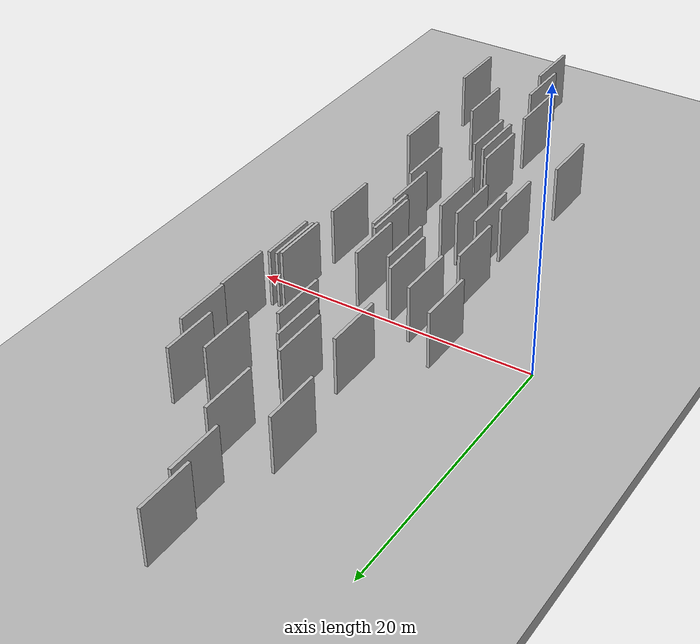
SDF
<?xml version="1.0" encoding="utf-8"?>

<sdf version="1.6">

   <world name="default">

      <gui fullscreen="0">

         <camera name="user_camera">

            <pose>-15 0 4.57585 0 0 0</pose>

            <view_controller>orbit</view_controller>

         </camera>

      </gui>

      <scene>

         <sky>

           <clouds>

             <speed>12</speed>

           </clouds>

         </sky>

         <ambient>0.4 0.4 0.4 1</ambient>

         <background>0.7 0.7 0.7 1</background>

         <shadows>1</shadows>

      </scene>

      <gravity>0 0 -9.8066</gravity>

      <magnetic_field>6e-06 2.3e-05 -4.2e-05</magnetic_field>

      <physics default="0" name="default_physics" type="ode">

         <ode>

            <solver>

               <type>quick</type>

               <iters>10</iters>

               <sor>1.0</sor>

               <use_dynamic_moi_rescaling>0</use_dynamic_moi_rescaling>

            </solver>

            <constraints>

               <cfm>0</cfm>

               <erp>0.2</erp>

               <contact_max_correcting_vel>100</contact_max_correcting_vel>

               <contact_surface_layer>0.001</contact_surface_layer>

            </constraints>

         </ode>

         <max_step_size>0.004</max_step_size>

         <real_time_factor>1</real_time_factor>

         <real_time_update_rate>250</real_time_update_rate>

      </physics>

      <light name="sun" type="directional">

         <cast_shadows>1</cast_shadows>

         <pose>0 0 10 0 0 0</pose>

         <diffuse>0.8 0.8 0.8 1</diffuse>

         <specular>0.2 0.2 0.2 1</specular>

         <attenuation>

            <range>1000</range>

            <constant>0.9</constant>

            <linear>0.01</linear>

            <quadratic>0.001</quadratic>

         </attenuation>

         <direction>-0.5 0.1 -0.9</direction>

      </light>

      <include>

         <name>ground_plane_1</name>

         <uri>model://HANNAS_ground_plane</uri>

         <pose>0 0 0  0 0 0</pose>

      </include>

      <include>

         <name>ground_plane_2</name>

         <uri>model://HANNAS_ground_plane</uri>

         <pose>100 0 0  0 0 0</pose>

      </include>

      <model name="HANNAS_wall_1">

         <static>1</static>

         <pose frame="">15.0076 13.9234 2.5 0.000000 0.000000 1.570796</pose>

         <link name="link">

            <pose frame="">0 0 2.00 0 0 0</pose>

            <collision name="collision">

               <geometry>

                  <box>

                     <size>4.00 0.2 4.00</size>

                  </box>

               </geometry>

               <max_contacts>10</max_contacts>

               <surface>

                  <contact>

                     <ode/>

                  </contact>

                  <bounce/>

                  <friction>

                     <torsional>

                        <ode/>

                     </torsional>

                     <ode/>

                  </friction>

               </surface>

            </collision>

            <visual name="visual">

               <cast_shadows>0</cast_shadows>

               <geometry>

                  <box>

                     <size>4.00 0.2 4.00</size>

                  </box>

               </geometry>

               <material>

                  <script>

                     <uri>model://HANNAS_wall/materials/scripts</uri>

                     <uri>model://HANNAS_wall/materials/textures</uri>

                     <name>vrc/HANNAS_wall</name>

                  </script>

               </material>

            </visual>

            <self_collide>0</self_collide>

            <enable_wind>0</enable_wind>

            <kinematic>0</kinematic>

         </link>

      </model>

      <model name="HANNAS_wall_2">

         <static>1</static>

         <pose frame="">8.5708 0.7904 2.5 0.000000 0.000000 1.570796</pose>

         <link name="link">

            <pose frame="">0 0 2.00 0 0 0</pose>

            <collision name="collision">

               <geometry>

                  <box>

                     <size>4.00 0.2 4.00</size>

                  </box>

               </geometry>

               <max_contacts>10</max_contacts>

               <surface>

                  <contact>

                     <ode/>

                  </contact>

                  <bounce/>

                  <friction>

                     <torsional>

                        <ode/>

                     </torsional>

                     <ode/>

                  </friction>

               </surface>

            </collision>

            <visual name="visual">

               <cast_shadows>0</cast_shadows>

               <geometry>

                  <box>

                     <size>4.00 0.2 4.00</size>

                  </box>

               </geometry>

               <material>

                  <script>

                     <uri>model://HANNAS_wall/materials/scripts</uri>

                     <uri>model://HANNAS_wall/materials/textures</uri>

                     <name>vrc/HANNAS_wall</name>

                  </script>

               </material>

            </visual>

            <self_collide>0</self_collide>

            <enable_wind>0</enable_wind>

            <kinematic>0</kinematic>

         </link>

      </model>

      <model name="HANNAS_wall_3">

         <static>1</static>

         <pose frame="">11.1726 0.4617 2.5 0.000000 0.000000 1.570796</pose>

         <link name="link">

            <pose frame="">0 0 2.00 0 0 0</pose>

            <collision name="collision">

               <geometry>

                  <box>

                     <size>4.00 0.2 4.00</size>

                  </box>

               </geometry>

               <max_contacts>10</max_contacts>

               <surface>

                  <contact>

                     <ode/>

                  </contact>

                  <bounce/>

                  <friction>

                     <torsional>

                        <ode/>

                     </torsional>

                     <ode/>

                  </friction>

               </surface>

            </collision>

            <visual name="visual">

               <cast_shadows>0</cast_shadows>

               <geometry>

                  <box>

                     <size>4.00 0.2 4.00</size>

                  </box>

               </geometry>

               <material>

                  <script>

                     <uri>model://HANNAS_wall/materials/scripts</uri>

                     <uri>model://HANNAS_wall/materials/textures</uri>

                     <name>vrc/HANNAS_wall</name>

                  </script>

               </material>

            </visual>

            <self_collide>0</self_collide>

            <enable_wind>0</enable_wind>

            <kinematic>0</kinematic>

         </link>

      </model>

      <model name="HANNAS_wall_4">

         <static>1</static>

         <pose frame="">13.2742 12.8010 2.5 0.000000 0.000000 1.570796</pose>

         <link name="link">

            <pose frame="">0 0 2.00 0 0 0</pose>

            <collision name="collision">

               <geometry>

                  <box>

                     <size>4.00 0.2 4.00</size>

                  </box>

               </geometry>

               <max_contacts>10</max_contacts>

               <surface>

                  <contact>

                     <ode/>

                  </contact>

                  <bounce/>

                  <friction>

                     <torsional>

                        <ode/>

                     </torsional>

                     <ode/>

                  </friction>

               </surface>

            </collision>

            <visual name="visual">

               <cast_shadows>0</cast_shadows>

               <geometry>

                  <box>

                     <size>4.00 0.2 4.00</size>

                  </box>

               </geometry>

               <material>

                  <script>

                     <uri>model://HANNAS_wall/materials/scripts</uri>

                     <uri>model://HANNAS_wall/materials/textures</uri>

                     <name>vrc/HANNAS_wall</name>

                  </script>

               </material>

            </visual>

            <self_collide>0</self_collide>

            <enable_wind>0</enable_wind>

            <kinematic>0</kinematic>

         </link>

      </model>

      <model name="HANNAS_wall_5">

         <static>1</static>

         <pose frame="">5.7178 -2.5260 2.5 0.000000 0.000000 1.570796</pose>

         <link name="link">

            <pose frame="">0 0 2.00 0 0 0</pose>

            <collision name="collision">

               <geometry>

                  <box>

                     <size>4.00 0.2 4.00</size>

                  </box>

               </geometry>

               <max_contacts>10</max_contacts>

               <surface>

                  <contact>

                     <ode/>

                  </contact>

                  <bounce/>

                  <friction>

                     <torsional>

                        <ode/>

                     </torsional>

                     <ode/>

                  </friction>

               </surface>

            </collision>

            <visual name="visual">

               <cast_shadows>0</cast_shadows>

               <geometry>

                  <box>

                     <size>4.00 0.2 4.00</size>

                  </box>

               </geometry>

               <material>

                  <script>

                     <uri>model://HANNAS_wall/materials/scripts</uri>

                     <uri>model://HANNAS_wall/materials/textures</uri>

                     <name>vrc/HANNAS_wall</name>

                  </script>

               </material>

            </visual>

            <self_collide>0</self_collide>

            <enable_wind>0</enable_wind>

            <kinematic>0</kinematic>

         </link>

      </model>

      <model name="HANNAS_wall_6">

         <static>1</static>

         <pose frame="">10.2606 -19.6512 2.5 0.000000 0.000000 1.570796</pose>

         <link name="link">

            <pose frame="">0 0 2.00 0 0 0</pose>

            <collision name="collision">

               <geometry>

                  <box>

                     <size>4.00 0.2 4.00</size>

                  </box>

               </geometry>

               <max_contacts>10</max_contacts>

               <surface>

                  <contact>

                     <ode/>

                  </contact>

                  <bounce/>

                  <friction>

                     <torsional>

                        <ode/>

                     </torsional>

                     <ode/>

                  </friction>

               </surface>

            </collision>

            <visual name="visual">

               <cast_shadows>0</cast_shadows>

               <geometry>

                  <box>

                     <size>4.00 0.2 4.00</size>

                  </box>

               </geometry>

               <material>

                  <script>

                     <uri>model://HANNAS_wall/materials/scripts</uri>

                     <uri>model://HANNAS_wall/materials/textures</uri>

                     <name>vrc/HANNAS_wall</name>

                  </script>

               </material>

            </visual>

            <self_collide>0</self_collide>

            <enable_wind>0</enable_wind>

            <kinematic>0</kinematic>

         </link>

      </model>

      <model name="HANNAS_wall_7">

         <static>1</static>

         <pose frame="">13.9472 -18.7358 2.5 0.000000 0.000000 1.570796</pose>

         <link name="link">

            <pose frame="">0 0 2.00 0 0 0</pose>

            <collision name="collision">

               <geometry>

                  <box>

                     <size>4.00 0.2 4.00</size>

                  </box>

               </geometry>

               <max_contacts>10</max_contacts>

               <surface>

                  <contact>

                     <ode/>

                  </contact>

                  <bounce/>

                  <friction>

                     <torsional>

                        <ode/>

                     </torsional>

                     <ode/>

                  </friction>

               </surface>

            </collision>

            <visual name="visual">

               <cast_shadows>0</cast_shadows>

               <geometry>

                  <box>

                     <size>4.00 0.2 4.00</size>

                  </box>

               </geometry>

               <material>

                  <script>

                     <uri>model://HANNAS_wall/materials/scripts</uri>

                     <uri>model://HANNAS_wall/materials/textures</uri>

                     <name>vrc/HANNAS_wall</name>

                  </script>

               </material>

            </visual>

            <self_collide>0</self_collide>

            <enable_wind>0</enable_wind>

            <kinematic>0</kinematic>

         </link>

      </model>

      <model name="HANNAS_wall_8">

         <static>1</static>

         <pose frame="">9.9331 -13.4862 2.5 0.000000 0.000000 1.570796</pose>

         <link name="link">

            <pose frame="">0 0 2.00 0 0 0</pose>

            <collision name="collision">

               <geometry>

                  <box>

                     <size>4.00 0.2 4.00</size>

                  </box>

               </geometry>

               <max_contacts>10</max_contacts>

               <surface>

                  <contact>

                     <ode/>

                  </contact>

                  <bounce/>

                  <friction>

                     <torsional>

                        <ode/>

                     </torsional>

                     <ode/>

                  </friction>

               </surface>

            </collision>

            <visual name="visual">

               <cast_shadows>0</cast_shadows>

               <geometry>

                  <box>

                     <size>4.00 0.2 4.00</size>

                  </box>

               </geometry>

               <material>

                  <script>

                     <uri>model://HANNAS_wall/materials/scripts</uri>

                     <uri>model://HANNAS_wall/materials/textures</uri>

                     <name>vrc/HANNAS_wall</name>

                  </script>

               </material>

            </visual>

            <self_collide>0</self_collide>

            <enable_wind>0</enable_wind>

            <kinematic>0</kinematic>

         </link>

      </model>

      <model name="HANNAS_wall_9">

         <static>1</static>

         <pose frame="">11.7046 -2.4017 2.5 0.000000 0.000000 1.570796</pose>

         <link name="link">

            <pose frame="">0 0 2.00 0 0 0</pose>

            <collision name="collision">

               <geometry>

                  <box>

                     <size>4.00 0.2 4.00</size>

                  </box>

               </geometry>

               <max_contacts>10</max_contacts>

               <surface>

                  <contact>

                     <ode/>

                  </contact>

                  <bounce/>

                  <friction>

                     <torsional>

                        <ode/>

                     </torsional>

                     <ode/>

                  </friction>

               </surface>

            </collision>

            <visual name="visual">

               <cast_shadows>0</cast_shadows>

               <geometry>

                  <box>

                     <size>4.00 0.2 4.00</size>

                  </box>

               </geometry>

               <material>

                  <script>

                     <uri>model://HANNAS_wall/materials/scripts</uri>

                     <uri>model://HANNAS_wall/materials/textures</uri>

                     <name>vrc/HANNAS_wall</name>

                  </script>

               </material>

            </visual>

            <self_collide>0</self_collide>

            <enable_wind>0</enable_wind>

            <kinematic>0</kinematic>

         </link>

      </model>

      <model name="HANNAS_wall_10">

         <static>1</static>

         <pose frame="">6.5764 1.9264 2.5 0.000000 0.000000 1.570796</pose>

         <link name="link">

            <pose frame="">0 0 2.00 0 0 0</pose>

            <collision name="collision">

               <geometry>

                  <box>

                     <size>4.00 0.2 4.00</size>

                  </box>

               </geometry>

               <max_contacts>10</max_contacts>

               <surface>

                  <contact>

                     <ode/>

                  </contact>

                  <bounce/>

                  <friction>

                     <torsional>

                        <ode/>

                     </torsional>

                     <ode/>

                  </friction>

               </surface>

            </collision>

            <visual name="visual">

               <cast_shadows>0</cast_shadows>

               <geometry>

                  <box>

                     <size>4.00 0.2 4.00</size>

                  </box>

               </geometry>

               <material>

                  <script>

                     <uri>model://HANNAS_wall/materials/scripts</uri>

                     <uri>model://HANNAS_wall/materials/textures</uri>

                     <name>vrc/HANNAS_wall</name>

                  </script>

               </material>

            </visual>

            <self_collide>0</self_collide>

            <enable_wind>0</enable_wind>

            <kinematic>0</kinematic>

         </link>

      </model>

      <model name="HANNAS_wall_11">

         <static>1</static>

         <pose frame="">4.2827 3.4458 2.5 0.000000 0.000000 1.570796</pose>

         <link name="link">

            <pose frame="">0 0 2.00 0 0 0</pose>

            <collision name="collision">

               <geometry>

                  <box>

                     <size>4.00 0.2 4.00</size>

                  </box>

               </geometry>

               <max_contacts>10</max_contacts>

               <surface>

                  <contact>

                     <ode/>

                  </contact>

                  <bounce/>

                  <friction>

                     <torsional>

                        <ode/>

                     </torsional>

                     <ode/>

                  </friction>

               </surface>

            </collision>

            <visual name="visual">

               <cast_shadows>0</cast_shadows>

               <geometry>

                  <box>

                     <size>4.00 0.2 4.00</size>

                  </box>

               </geometry>

               <material>

                  <script>

                     <uri>model://HANNAS_wall/materials/scripts</uri>

                     <uri>model://HANNAS_wall/materials/textures</uri>

                     <name>vrc/HANNAS_wall</name>

                  </script>

               </material>

            </visual>

            <self_collide>0</self_collide>

            <enable_wind>0</enable_wind>

            <kinematic>0</kinematic>

         </link>

      </model>

      <model name="HANNAS_wall_12">

         <static>1</static>

         <pose frame="">10.5418 9.6106 2.5 0.000000 0.000000 1.570796</pose>

         <link name="link">

            <pose frame="">0 0 2.00 0 0 0</pose>

            <collision name="collision">

               <geometry>

                  <box>

                     <size>4.00 0.2 4.00</size>

                  </box>

               </geometry>

               <max_contacts>10</max_contacts>

               <surface>

                  <contact>

                     <ode/>

                  </contact>

                  <bounce/>

                  <friction>

                     <torsional>

                        <ode/>

                     </torsional>

                     <ode/>

                  </friction>

               </surface>

            </collision>

            <visual name="visual">

               <cast_shadows>0</cast_shadows>

               <geometry>

                  <box>

                     <size>4.00 0.2 4.00</size>

                  </box>

               </geometry>

               <material>

                  <script>

                     <uri>model://HANNAS_wall/materials/scripts</uri>

                     <uri>model://HANNAS_wall/materials/textures</uri>

                     <name>vrc/HANNAS_wall</name>

                  </script>

               </material>

            </visual>

            <self_collide>0</self_collide>

            <enable_wind>0</enable_wind>

            <kinematic>0</kinematic>

         </link>

      </model>

      <model name="HANNAS_wall_13">

         <static>1</static>

         <pose frame="">15.0496 2.9080 2.5 0.000000 0.000000 1.570796</pose>

         <link name="link">

            <pose frame="">0 0 2.00 0 0 0</pose>

            <collision name="collision">

               <geometry>

                  <box>

                     <size>4.00 0.2 4.00</size>

                  </box>

               </geometry>

               <max_contacts>10</max_contacts>

               <surface>

                  <contact>

                     <ode/>

                  </contact>

                  <bounce/>

                  <friction>

                     <torsional>

                        <ode/>

                     </torsional>

                     <ode/>

                  </friction>

               </surface>

            </collision>

            <visual name="visual">

               <cast_shadows>0</cast_shadows>

               <geometry>

                  <box>

                     <size>4.00 0.2 4.00</size>

                  </box>

               </geometry>

               <material>

                  <script>

                     <uri>model://HANNAS_wall/materials/scripts</uri>

                     <uri>model://HANNAS_wall/materials/textures</uri>

                     <name>vrc/HANNAS_wall</name>

                  </script>

               </material>

            </visual>

            <self_collide>0</self_collide>

            <enable_wind>0</enable_wind>

            <kinematic>0</kinematic>

         </link>

      </model>

      <model name="HANNAS_wall_14">

         <static>1</static>

         <pose frame="">15.7496 3.1780 2.5 0.000000 0.000000 1.570796</pose>

         <link name="link">

            <pose frame="">0 0 2.00 0 0 0</pose>

            <collision name="collision">

               <geometry>

                  <box>

                     <size>4.00 0.2 4.00</size>

                  </box>

               </geometry>

               <max_contacts>10</max_contacts>

               <surface>

                  <contact>

                     <ode/>

                  </contact>

                  <bounce/>

                  <friction>

                     <torsional>

                        <ode/>

                     </torsional>

                     <ode/>

                  </friction>

               </surface>

            </collision>

            <visual name="visual">

               <cast_shadows>0</cast_shadows>

               <geometry>

                  <box>

                     <size>4.00 0.2 4.00</size>

                  </box>

               </geometry>

               <material>

                  <script>

                     <uri>model://HANNAS_wall/materials/scripts</uri>

                     <uri>model://HANNAS_wall/materials/textures</uri>

                     <name>vrc/HANNAS_wall</name>

                  </script>

               </material>

            </visual>

            <self_collide>0</self_collide>

            <enable_wind>0</enable_wind>

            <kinematic>0</kinematic>

         </link>

      </model>

      <model name="HANNAS_wall_15">

         <static>1</static>

         <pose frame="">15.0167 -2.6453 2.5 0.000000 0.000000 1.570796</pose>

         <link name="link">

            <pose frame="">0 0 2.00 0 0 0</pose>

            <collision name="collision">

               <geometry>

                  <box>

                     <size>4.00 0.2 4.00</size>

                  </box>

               </geometry>

               <max_contacts>10</max_contacts>

               <surface>

                  <contact>

                     <ode/>

                  </contact>

                  <bounce/>

                  <friction>

                     <torsional>

                        <ode/>

                     </torsional>

                     <ode/>

                  </friction>

               </surface>

            </collision>

            <visual name="visual">

               <cast_shadows>0</cast_shadows>

               <geometry>

                  <box>

                     <size>4.00 0.2 4.00</size>

                  </box>

               </geometry>

               <material>

                  <script>

                     <uri>model://HANNAS_wall/materials/scripts</uri>

                     <uri>model://HANNAS_wall/materials/textures</uri>

                     <name>vrc/HANNAS_wall</name>

                  </script>

               </material>

            </visual>

            <self_collide>0</self_collide>

            <enable_wind>0</enable_wind>

            <kinematic>0</kinematic>

         </link>

      </model>

      <model name="HANNAS_wall_16">

         <static>1</static>

         <pose frame="">5.2486 -14.7160 2.5 0.000000 0.000000 1.570796</pose>

         <link name="link">

            <pose frame="">0 0 2.00 0 0 0</pose>

            <collision name="collision">

               <geometry>

                  <box>

                     <size>4.00 0.2 4.00</size>

                  </box>

               </geometry>

               <max_contacts>10</max_contacts>

               <surface>

                  <contact>

                     <ode/>

                  </contact>

                  <bounce/>

                  <friction>

                     <torsional>

                        <ode/>

                     </torsional>

                     <ode/>

                  </friction>

               </surface>

            </collision>

            <visual name="visual">

               <cast_shadows>0</cast_shadows>

               <geometry>

                  <box>

                     <size>4.00 0.2 4.00</size>

                  </box>

               </geometry>

               <material>

                  <script>

                     <uri>model://HANNAS_wall/materials/scripts</uri>

                     <uri>model://HANNAS_wall/materials/textures</uri>

                     <name>vrc/HANNAS_wall</name>

                  </script>

               </material>

            </visual>

            <self_collide>0</self_collide>

            <enable_wind>0</enable_wind>

            <kinematic>0</kinematic>

         </link>

      </model>

      <model name="HANNAS_wall_17">

         <static>1</static>

         <pose frame="">11.5002 -14.7473 2.5 0.000000 0.000000 1.570796</pose>

         <link name="link">

            <pose frame="">0 0 2.00 0 0 0</pose>

            <collision name="collision">

               <geometry>

                  <box>

                     <size>4.00 0.2 4.00</size>

                  </box>

               </geometry>

               <max_contacts>10</max_contacts>

               <surface>

                  <contact>

                     <ode/>

                  </contact>

                  <bounce/>

                  <friction>

                     <torsional>

                        <ode/>

                     </torsional>

                     <ode/>

                  </friction>

               </surface>

            </collision>

            <visual name="visual">

               <cast_shadows>0</cast_shadows>

               <geometry>

                  <box>

                     <size>4.00 0.2 4.00</size>

                  </box>

               </geometry>

               <material>

                  <script>

                     <uri>model://HANNAS_wall/materials/scripts</uri>

                     <uri>model://HANNAS_wall/materials/textures</uri>

                     <name>vrc/HANNAS_wall</name>

                  </script>

               </material>

            </visual>

            <self_collide>0</self_collide>

            <enable_wind>0</enable_wind>

            <kinematic>0</kinematic>

         </link>

      </model>

      <model name="HANNAS_wall_18">

         <static>1</static>

         <pose frame="">16.0693 11.3909 2.5 0.000000 0.000000 1.570796</pose>

         <link name="link">

            <pose frame="">0 0 2.00 0 0 0</pose>

            <collision name="collision">

               <geometry>

                  <box>

                     <size>4.00 0.2 4.00</size>

                  </box>

               </geometry>

               <max_contacts>10</max_contacts>

               <surface>

                  <contact>

                     <ode/>

                  </contact>

                  <bounce/>

                  <friction>

                     <torsional>

                        <ode/>

                     </torsional>

                     <ode/>

                  </friction>

               </surface>

            </collision>

            <visual name="visual">

               <cast_shadows>0</cast_shadows>

               <geometry>

                  <box>

                     <size>4.00 0.2 4.00</size>

                  </box>

               </geometry>

               <material>

                  <script>

                     <uri>model://HANNAS_wall/materials/scripts</uri>

                     <uri>model://HANNAS_wall/materials/textures</uri>

                     <name>vrc/HANNAS_wall</name>

                  </script>

               </material>

            </visual>

            <self_collide>0</self_collide>

            <enable_wind>0</enable_wind>

            <kinematic>0</kinematic>

         </link>

      </model>

      <model name="HANNAS_wall_19">

         <static>1</static>

         <pose frame="">12.4589 -5.9564 2.5 0.000000 0.000000 1.570796</pose>

         <link name="link">

            <pose frame="">0 0 2.00 0 0 0</pose>

            <collision name="collision">

               <geometry>

                  <box>

                     <size>4.00 0.2 4.00</size>

                  </box>

               </geometry>

               <max_contacts>10</max_contacts>

               <surface>

                  <contact>

                     <ode/>

                  </contact>

                  <bounce/>

                  <friction>

                     <torsional>

                        <ode/>

                     </torsional>

                     <ode/>

                  </friction>

               </surface>

            </collision>

            <visual name="visual">

               <cast_shadows>0</cast_shadows>

               <geometry>

                  <box>

                     <size>4.00 0.2 4.00</size>

                  </box>

               </geometry>

               <material>

                  <script>

                     <uri>model://HANNAS_wall/materials/scripts</uri>

                     <uri>model://HANNAS_wall/materials/textures</uri>

                     <name>vrc/HANNAS_wall</name>

                  </script>

               </material>

            </visual>

            <self_collide>0</self_collide>

            <enable_wind>0</enable_wind>

            <kinematic>0</kinematic>

         </link>

      </model>

      <model name="HANNAS_wall_20">

         <static>1</static>

         <pose frame="">12.0651 -2.8417 2.5 0.000000 0.000000 1.570796</pose>

         <link name="link">

            <pose frame="">0 0 2.00 0 0 0</pose>

            <collision name="collision">

               <geometry>

                  <box>

                     <size>4.00 0.2 4.00</size>

                  </box>

               </geometry>

               <max_contacts>10</max_contacts>

               <surface>

                  <contact>

                     <ode/>

                  </contact>

                  <bounce/>

                  <friction>

                     <torsional>

                        <ode/>

                     </torsional>

                     <ode/>

                  </friction>

               </surface>

            </collision>

            <visual name="visual">

               <cast_shadows>0</cast_shadows>

               <geometry>

                  <box>

                     <size>4.00 0.2 4.00</size>

                  </box>

               </geometry>

               <material>

                  <script>

                     <uri>model://HANNAS_wall/materials/scripts</uri>

                     <uri>model://HANNAS_wall/materials/textures</uri>

                     <name>vrc/HANNAS_wall</name>

                  </script>

               </material>

            </visual>

            <self_collide>0</self_collide>

            <enable_wind>0</enable_wind>

            <kinematic>0</kinematic>

         </link>

      </model>

      <model name="HANNAS_wall_21">

         <static>1</static>

         <pose frame="">16.8596 -22.7576 2.5 0.000000 0.000000 1.570796</pose>

         <link name="link">

            <pose frame="">0 0 2.00 0 0 0</pose>

            <collision name="collision">

               <geometry>

                  <box>

                     <size>4.00 0.2 4.00</size>

                  </box>

               </geometry>

               <max_contacts>10</max_contacts>

               <surface>

                  <contact>

                     <ode/>

                  </contact>

                  <bounce/>

                  <friction>

                     <torsional>

                        <ode/>

                     </torsional>

                     <ode/>

                  </friction>

               </surface>

            </collision>

            <visual name="visual">

               <cast_shadows>0</cast_shadows>

               <geometry>

                  <box>

                     <size>4.00 0.2 4.00</size>

                  </box>

               </geometry>

               <material>

                  <script>

                     <uri>model://HANNAS_wall/materials/scripts</uri>

                     <uri>model://HANNAS_wall/materials/textures</uri>

                     <name>vrc/HANNAS_wall</name>

                  </script>

               </material>

            </visual>

            <self_collide>0</self_collide>

            <enable_wind>0</enable_wind>

            <kinematic>0</kinematic>

         </link>

      </model>

      <model name="HANNAS_wall_22">

         <static>1</static>

         <pose frame="">9.5572 10.8462 2.5 0.000000 0.000000 1.570796</pose>

         <link name="link">

            <pose frame="">0 0 2.00 0 0 0</pose>

            <collision name="collision">

               <geometry>

                  <box>

                     <size>4.00 0.2 4.00</size>

                  </box>

               </geometry>

               <max_contacts>10</max_contacts>

               <surface>

                  <contact>

                     <ode/>

                  </contact>

                  <bounce/>

                  <friction>

                     <torsional>

                        <ode/>

                     </torsional>

                     <ode/>

                  </friction>

               </surface>

            </collision>

            <visual name="visual">

               <cast_shadows>0</cast_shadows>

               <geometry>

                  <box>

                     <size>4.00 0.2 4.00</size>

                  </box>

               </geometry>

               <material>

                  <script>

                     <uri>model://HANNAS_wall/materials/scripts</uri>

                     <uri>model://HANNAS_wall/materials/textures</uri>

                     <name>vrc/HANNAS_wall</name>

                  </script>

               </material>

            </visual>

            <self_collide>0</self_collide>

            <enable_wind>0</enable_wind>

            <kinematic>0</kinematic>

         </link>

      </model>

      <model name="HANNAS_wall_23">

         <static>1</static>

         <pose frame="">16.1855 7.3647 2.5 0.000000 0.000000 1.570796</pose>

         <link name="link">

            <pose frame="">0 0 2.00 0 0 0</pose>

            <collision name="collision">

               <geometry>

                  <box>

                     <size>4.00 0.2 4.00</size>

                  </box>

               </geometry>

               <max_contacts>10</max_contacts>

               <surface>

                  <contact>

                     <ode/>

                  </contact>

                  <bounce/>

                  <friction>

                     <torsional>

                        <ode/>

                     </torsional>

                     <ode/>

                  </friction>

               </surface>

            </collision>

            <visual name="visual">

               <cast_shadows>0</cast_shadows>

               <geometry>

                  <box>

                     <size>4.00 0.2 4.00</size>

                  </box>

               </geometry>

               <material>

                  <script>

                     <uri>model://HANNAS_wall/materials/scripts</uri>

                     <uri>model://HANNAS_wall/materials/textures</uri>

                     <name>vrc/HANNAS_wall</name>

                  </script>

               </material>

            </visual>

            <self_collide>0</self_collide>

            <enable_wind>0</enable_wind>

            <kinematic>0</kinematic>

         </link>

      </model>

      <model name="HANNAS_wall_24">

         <static>1</static>

         <pose frame="">11.6396 8.0376 2.5 0.000000 0.000000 1.570796</pose>

         <link name="link">

            <pose frame="">0 0 2.00 0 0 0</pose>

            <collision name="collision">

               <geometry>

                  <box>

                     <size>4.00 0.2 4.00</size>

                  </box>

               </geometry>

               <max_contacts>10</max_contacts>

               <surface>

                  <contact>

                     <ode/>

                  </contact>

                  <bounce/>

                  <friction>

                     <torsional>

                        <ode/>

                     </torsional>

                     <ode/>

                  </friction>

               </surface>

            </collision>

            <visual name="visual">

               <cast_shadows>0</cast_shadows>

               <geometry>

                  <box>

                     <size>4.00 0.2 4.00</size>

                  </box>

               </geometry>

               <material>

                  <script>

                     <uri>model://HANNAS_wall/materials/scripts</uri>

                     <uri>model://HANNAS_wall/materials/textures</uri>

                     <name>vrc/HANNAS_wall</name>

                  </script>

               </material>

            </visual>

            <self_collide>0</self_collide>

            <enable_wind>0</enable_wind>

            <kinematic>0</kinematic>

         </link>

      </model>

      <model name="HANNAS_wall_25">

         <static>1</static>

         <pose frame="">10.7020 -14.4868 2.5 0.000000 0.000000 1.570796</pose>

         <link name="link">

            <pose frame="">0 0 2.00 0 0 0</pose>

            <collision name="collision">

               <geometry>

                  <box>

                     <size>4.00 0.2 4.00</size>

                  </box>

               </geometry>

               <max_contacts>10</max_contacts>

               <surface>

                  <contact>

                     <ode/>

                  </contact>

                  <bounce/>

                  <friction>

                     <torsional>

                        <ode/>

                     </torsional>

                     <ode/>

                  </friction>

               </surface>

            </collision>

            <visual name="visual">

               <cast_shadows>0</cast_shadows>

               <geometry>

                  <box>

                     <size>4.00 0.2 4.00</size>

                  </box>

               </geometry>

               <material>

                  <script>

                     <uri>model://HANNAS_wall/materials/scripts</uri>

                     <uri>model://HANNAS_wall/materials/textures</uri>

                     <name>vrc/HANNAS_wall</name>

                  </script>

               </material>

            </visual>

            <self_collide>0</self_collide>

            <enable_wind>0</enable_wind>

            <kinematic>0</kinematic>

         </link>

      </model>

      <model name="HANNAS_wall_26">

         <static>1</static>

         <pose frame="">10.0569 16.8701 2.5 0.000000 0.000000 1.570796</pose>

         <link name="link">

            <pose frame="">0 0 2.00 0 0 0</pose>

            <collision name="collision">

               <geometry>

                  <box>

                     <size>4.00 0.2 4.00</size>

                  </box>

               </geometry>

               <max_contacts>10</max_contacts>

               <surface>

                  <contact>

                     <ode/>

                  </contact>

                  <bounce/>

                  <friction>

                     <torsional>

                        <ode/>

                     </torsional>

                     <ode/>

                  </friction>

               </surface>

            </collision>

            <visual name="visual">

               <cast_shadows>0</cast_shadows>

               <geometry>

                  <box>

                     <size>4.00 0.2 4.00</size>

                  </box>

               </geometry>

               <material>

                  <script>

                     <uri>model://HANNAS_wall/materials/scripts</uri>

                     <uri>model://HANNAS_wall/materials/textures</uri>

                     <name>vrc/HANNAS_wall</name>

                  </script>

               </material>

            </visual>

            <self_collide>0</self_collide>

            <enable_wind>0</enable_wind>

            <kinematic>0</kinematic>

         </link>

      </model>

      <model name="HANNAS_wall_27">

         <static>1</static>

         <pose frame="">12.2892 -25.9407 2.5 0.000000 0.000000 1.570796</pose>

         <link name="link">

            <pose frame="">0 0 2.00 0 0 0</pose>

            <collision name="collision">

               <geometry>

                  <box>

                     <size>4.00 0.2 4.00</size>

                  </box>

               </geometry>

               <max_contacts>10</max_contacts>

               <surface>

                  <contact>

                     <ode/>

                  </contact>

                  <bounce/>

                  <friction>

                     <torsional>

                        <ode/>

                     </torsional>

                     <ode/>

                  </friction>

               </surface>

            </collision>

            <visual name="visual">

               <cast_shadows>0</cast_shadows>

               <geometry>

                  <box>

                     <size>4.00 0.2 4.00</size>

                  </box>

               </geometry>

               <material>

                  <script>

                     <uri>model://HANNAS_wall/materials/scripts</uri>

                     <uri>model://HANNAS_wall/materials/textures</uri>

                     <name>vrc/HANNAS_wall</name>

                  </script>

               </material>

            </visual>

            <self_collide>0</self_collide>

            <enable_wind>0</enable_wind>

            <kinematic>0</kinematic>

         </link>

      </model>

      <model name="HANNAS_wall_28">

         <static>1</static>

         <pose frame="">6.0562 -8.4607 2.5 0.000000 0.000000 1.570796</pose>

         <link name="link">

            <pose frame="">0 0 2.00 0 0 0</pose>

            <collision name="collision">

               <geometry>

                  <box>

                     <size>4.00 0.2 4.00</size>

                  </box>

               </geometry>

               <max_contacts>10</max_contacts>

               <surface>

                  <contact>

                     <ode/>

                  </contact>

                  <bounce/>

                  <friction>

                     <torsional>

                        <ode/>

                     </torsional>

                     <ode/>

                  </friction>

               </surface>

            </collision>

            <visual name="visual">

               <cast_shadows>0</cast_shadows>

               <geometry>

                  <box>

                     <size>4.00 0.2 4.00</size>

                  </box>

               </geometry>

               <material>

                  <script>

                     <uri>model://HANNAS_wall/materials/scripts</uri>

                     <uri>model://HANNAS_wall/materials/textures</uri>

                     <name>vrc/HANNAS_wall</name>

                  </script>

               </material>

            </visual>

            <self_collide>0</self_collide>

            <enable_wind>0</enable_wind>

            <kinematic>0</kinematic>

         </link>

      </model>

      <model name="HANNAS_wall_29">

         <static>1</static>

         <pose frame="">6.7509 -6.4184 2.5 0.000000 0.000000 1.570796</pose>

         <link name="link">

            <pose frame="">0 0 2.00 0 0 0</pose>

            <collision name="collision">

               <geometry>

                  <box>

                     <size>4.00 0.2 4.00</size>

                  </box>

               </geometry>

               <max_contacts>10</max_contacts>

               <surface>

                  <contact>

                     <ode/>

                  </contact>

                  <bounce/>

                  <friction>

                     <torsional>

                        <ode/>

                     </torsional>

                     <ode/>

                  </friction>

               </surface>

            </collision>

            <visual name="visual">

               <cast_shadows>0</cast_shadows>

               <geometry>

                  <box>

                     <size>4.00 0.2 4.00</size>

                  </box>

               </geometry>

               <material>

                  <script>

                     <uri>model://HANNAS_wall/materials/scripts</uri>

                     <uri>model://HANNAS_wall/materials/textures</uri>

                     <name>vrc/HANNAS_wall</name>

                  </script>

               </material>

            </visual>

            <self_collide>0</self_collide>

            <enable_wind>0</enable_wind>

            <kinematic>0</kinematic>

         </link>

      </model>

      <model name="HANNAS_wall_30">

         <static>1</static>

         <pose frame="">15.2959 3.0814 2.5 0.000000 0.000000 1.570796</pose>

         <link name="link">

            <pose frame="">0 0 2.00 0 0 0</pose>

            <collision name="collision">

               <geometry>

                  <box>

                     <size>4.00 0.2 4.00</size>

                  </box>

               </geometry>

               <max_contacts>10</max_contacts>

               <surface>

                  <contact>

                     <ode/>

                  </contact>

                  <bounce/>

                  <friction>

                     <torsional>

                        <ode/>

                     </torsional>

                     <ode/>

                  </friction>

               </surface>

            </collision>

            <visual name="visual">

               <cast_shadows>0</cast_shadows>

               <geometry>

                  <box>

                     <size>4.00 0.2 4.00</size>

                  </box>

               </geometry>

               <material>

                  <script>

                     <uri>model://HANNAS_wall/materials/scripts</uri>

                     <uri>model://HANNAS_wall/materials/textures</uri>

                     <name>vrc/HANNAS_wall</name>

                  </script>

               </material>

            </visual>

            <self_collide>0</self_collide>

            <enable_wind>0</enable_wind>

            <kinematic>0</kinematic>

         </link>

      </model>

      <model name="HANNAS_wall_31">

         <static>1</static>

         <pose frame="">7.5487 8.3180 2.5 0.000000 0.000000 1.570796</pose>

         <link name="link">

            <pose frame="">0 0 2.00 0 0 0</pose>

            <collision name="collision">

               <geometry>

                  <box>

                     <size>4.00 0.2 4.00</size>

                  </box>

               </geometry>

               <max_contacts>10</max_contacts>

               <surface>

                  <contact>

                     <ode/>

                  </contact>

                  <bounce/>

                  <friction>

                     <torsional>

                        <ode/>

                     </torsional>

                     <ode/>

                  </friction>

               </surface>

            </collision>

            <visual name="visual">

               <cast_shadows>0</cast_shadows>

               <geometry>

                  <box>

                     <size>4.00 0.2 4.00</size>

                  </box>

               </geometry>

               <material>

                  <script>

                     <uri>model://HANNAS_wall/materials/scripts</uri>

                     <uri>model://HANNAS_wall/materials/textures</uri>

                     <name>vrc/HANNAS_wall</name>

                  </script>

               </material>

            </visual>

            <self_collide>0</self_collide>

            <enable_wind>0</enable_wind>

            <kinematic>0</kinematic>

         </link>

      </model>

      <model name="HANNAS_wall_32">

         <static>1</static>

         <pose frame="">11.5457 -23.0181 2.5 0.000000 0.000000 1.570796</pose>

         <link name="link">

            <pose frame="">0 0 2.00 0 0 0</pose>

            <collision name="collision">

               <geometry>

                  <box>

                     <size>4.00 0.2 4.00</size>

                  </box>

               </geometry>

               <max_contacts>10</max_contacts>

               <surface>

                  <contact>

                     <ode/>

                  </contact>

                  <bounce/>

                  <friction>

                     <torsional>

                        <ode/>

                     </torsional>

                     <ode/>

                  </friction>

               </surface>

            </collision>

            <visual name="visual">

               <cast_shadows>0</cast_shadows>

               <geometry>

                  <box>

                     <size>4.00 0.2 4.00</size>

                  </box>

               </geometry>

               <material>

                  <script>

                     <uri>model://HANNAS_wall/materials/scripts</uri>

                     <uri>model://HANNAS_wall/materials/textures</uri>

                     <name>vrc/HANNAS_wall</name>

                  </script>

               </material>

            </visual>

            <self_collide>0</self_collide>

            <enable_wind>0</enable_wind>

            <kinematic>0</kinematic>

         </link>

      </model>

      <model name="HANNAS_wall_33">

         <static>1</static>

         <pose frame="">8.1353 24.6373 2.5 0.000000 0.000000 1.570796</pose>

         <link name="link">

            <pose frame="">0 0 2.00 0 0 0</pose>

            <collision name="collision">

               <geometry>

                  <box>

                     <size>4.00 0.2 4.00</size>

                  </box>

               </geometry>

               <max_contacts>10</max_contacts>

               <surface>

                  <contact>

                     <ode/>

                  </contact>

                  <bounce/>

                  <friction>

                     <torsional>

                        <ode/>

                     </torsional>

                     <ode/>

                  </friction>

               </surface>

            </collision>

            <visual name="visual">

               <cast_shadows>0</cast_shadows>

               <geometry>

                  <box>

                     <size>4.00 0.2 4.00</size>

                  </box>

               </geometry>

               <material>

                  <script>

                     <uri>model://HANNAS_wall/materials/scripts</uri>

                     <uri>model://HANNAS_wall/materials/textures</uri>

                     <name>vrc/HANNAS_wall</name>

                  </script>

               </material>

            </visual>

            <self_collide>0</self_collide>

            <enable_wind>0</enable_wind>

            <kinematic>0</kinematic>

         </link>

      </model>

      <model name="HANNAS_wall_34">

         <static>1</static>

         <pose frame="">15.9194 -13.3920 2.5 0.000000 0.000000 1.570796</pose>

         <link name="link">

            <pose frame="">0 0 2.00 0 0 0</pose>

            <collision name="collision">

               <geometry>

                  <box>

                     <size>4.00 0.2 4.00</size>

                  </box>

               </geometry>

               <max_contacts>10</max_contacts>

               <surface>

                  <contact>

                     <ode/>

                  </contact>

                  <bounce/>

                  <friction>

                     <torsional>

                        <ode/>

                     </torsional>

                     <ode/>

                  </friction>

               </surface>

            </collision>

            <visual name="visual">

               <cast_shadows>0</cast_shadows>

               <geometry>

                  <box>

                     <size>4.00 0.2 4.00</size>

                  </box>

               </geometry>

               <material>

                  <script>

                     <uri>model://HANNAS_wall/materials/scripts</uri>

                     <uri>model://HANNAS_wall/materials/textures</uri>

                     <name>vrc/HANNAS_wall</name>

                  </script>

               </material>

            </visual>

            <self_collide>0</self_collide>

            <enable_wind>0</enable_wind>

            <kinematic>0</kinematic>

         </link>

      </model>

      <model name="HANNAS_wall_35">

         <static>1</static>

         <pose frame="">6.7040 15.6985 2.5 0.000000 0.000000 1.570796</pose>

         <link name="link">

            <pose frame="">0 0 2.00 0 0 0</pose>

            <collision name="collision">

               <geometry>

                  <box>

                     <size>4.00 0.2 4.00</size>

                  </box>

               </geometry>

               <max_contacts>10</max_contacts>

               <surface>

                  <contact>

                     <ode/>

                  </contact>

                  <bounce/>

                  <friction>

                     <torsional>

                        <ode/>

                     </torsional>

                     <ode/>

                  </friction>

               </surface>

            </collision>

            <visual name="visual">

               <cast_shadows>0</cast_shadows>

               <geometry>

                  <box>

                     <size>4.00 0.2 4.00</size>

                  </box>

               </geometry>

               <material>

                  <script>

                     <uri>model://HANNAS_wall/materials/scripts</uri>

                     <uri>model://HANNAS_wall/materials/textures</uri>

                     <name>vrc/HANNAS_wall</name>

                  </script>

               </material>

            </visual>

            <self_collide>0</self_collide>

            <enable_wind>0</enable_wind>

            <kinematic>0</kinematic>

         </link>

      </model>

      <model name="HANNAS_wall_36">

         <static>1</static>

         <pose frame="">8.6267 21.6415 2.5 0.000000 0.000000 1.570796</pose>

         <link name="link">

            <pose frame="">0 0 2.00 0 0 0</pose>

            <collision name="collision">

               <geometry>

                  <box>

                     <size>4.00 0.2 4.00</size>

                  </box>

               </geometry>

               <max_contacts>10</max_contacts>

               <surface>

                  <contact>

                     <ode/>

                  </contact>

                  <bounce/>

                  <friction>

                     <torsional>

                        <ode/>

                     </torsional>

                     <ode/>

                  </friction>

               </surface>

            </collision>

            <visual name="visual">

               <cast_shadows>0</cast_shadows>

               <geometry>

                  <box>

                     <size>4.00 0.2 4.00</size>

                  </box>

               </geometry>

               <material>

                  <script>

                     <uri>model://HANNAS_wall/materials/scripts</uri>

                     <uri>model://HANNAS_wall/materials/textures</uri>

                     <name>vrc/HANNAS_wall</name>

                  </script>

               </material>

            </visual>

            <self_collide>0</self_collide>

            <enable_wind>0</enable_wind>

            <kinematic>0</kinematic>

         </link>

      </model>

      <model name="HANNAS_wall_37">

         <static>1</static>

         <pose frame="">9.3306 -0.1686 2.5 0.000000 0.000000 1.570796</pose>

         <link name="link">

            <pose frame="">0 0 2.00 0 0 0</pose>

            <collision name="collision">

               <geometry>

                  <box>

                     <size>4.00 0.2 4.00</size>

                  </box>

               </geometry>

               <max_contacts>10</max_contacts>

               <surface>

                  <contact>

                     <ode/>

                  </contact>

                  <bounce/>

                  <friction>

                     <torsional>

                        <ode/>

                     </torsional>

                     <ode/>

                  </friction>

               </surface>

            </collision>

            <visual name="visual">

               <cast_shadows>0</cast_shadows>

               <geometry>

                  <box>

                     <size>4.00 0.2 4.00</size>

                  </box>

               </geometry>

               <material>

                  <script>

                     <uri>model://HANNAS_wall/materials/scripts</uri>

                     <uri>model://HANNAS_wall/materials/textures</uri>

                     <name>vrc/HANNAS_wall</name>

                  </script>

               </material>

            </visual>

            <self_collide>0</self_collide>

            <enable_wind>0</enable_wind>

            <kinematic>0</kinematic>

         </link>

      </model>

      <model name="HANNAS_wall_38">

         <static>1</static>

         <pose frame="">8.2215 -6.6243 2.5 0.000000 0.000000 1.570796</pose>

         <link name="link">

            <pose frame="">0 0 2.00 0 0 0</pose>

            <collision name="collision">

               <geometry>

                  <box>

                     <size>4.00 0.2 4.00</size>

                  </box>

               </geometry>

               <max_contacts>10</max_contacts>

               <surface>

                  <contact>

                     <ode/>

                  </contact>

                  <bounce/>

                  <friction>

                     <torsional>

                        <ode/>

                     </torsional>

                     <ode/>

                  </friction>

               </surface>

            </collision>

            <visual name="visual">

               <cast_shadows>0</cast_shadows>

               <geometry>

                  <box>

                     <size>4.00 0.2 4.00</size>

                  </box>

               </geometry>

               <material>

                  <script>

                     <uri>model://HANNAS_wall/materials/scripts</uri>

                     <uri>model://HANNAS_wall/materials/textures</uri>

                     <name>vrc/HANNAS_wall</name>

                  </script>

               </material>

            </visual>

            <self_collide>0</self_collide>

            <enable_wind>0</enable_wind>

            <kinematic>0</kinematic>

         </link>

      </model>

      <model name="HANNAS_wall_39">

         <static>1</static>

         <pose frame="">13.2193 -9.1766 2.5 0.000000 0.000000 1.570796</pose>

         <link name="link">

            <pose frame="">0 0 2.00 0 0 0</pose>

            <collision name="collision">

               <geometry>

                  <box>

                     <size>4.00 0.2 4.00</size>

                  </box>

               </geometry>

               <max_contacts>10</max_contacts>

               <surface>

                  <contact>

                     <ode/>

                  </contact>

                  <bounce/>

                  <friction>

                     <torsional>

                        <ode/>

                     </torsional>

                     <ode/>

                  </friction>

               </surface>

            </collision>

            <visual name="visual">

               <cast_shadows>0</cast_shadows>

               <geometry>

                  <box>

                     <size>4.00 0.2 4.00</size>

                  </box>

               </geometry>

               <material>

                  <script>

                     <uri>model://HANNAS_wall/materials/scripts</uri>

                     <uri>model://HANNAS_wall/materials/textures</uri>

                     <name>vrc/HANNAS_wall</name>

                  </script>

               </material>

            </visual>

            <self_collide>0</self_collide>

            <enable_wind>0</enable_wind>

            <kinematic>0</kinematic>

         </link>

      </model>

      <model name="HANNAS_wall_40">

         <static>1</static>

         <pose frame="">9.5002 -6.8485 2.5 0.000000 0.000000 1.570796</pose>

         <link name="link">

            <pose frame="">0 0 2.00 0 0 0</pose>

            <collision name="collision">

               <geometry>

                  <box>

                     <size>4.00 0.2 4.00</size>

                  </box>

               </geometry>

               <max_contacts>10</max_contacts>

               <surface>

                  <contact>

                     <ode/>

                  </contact>

                  <bounce/>

                  <friction>

                     <torsional>

                        <ode/>

                     </torsional>

                     <ode/>

                  </friction>

               </surface>

            </collision>

            <visual name="visual">

               <cast_shadows>0</cast_shadows>

               <geometry>

                  <box>

                     <size>4.00 0.2 4.00</size>

                  </box>

               </geometry>

               <material>

                  <script>

                     <uri>model://HANNAS_wall/materials/scripts</uri>

                     <uri>model://HANNAS_wall/materials/textures</uri>

                     <name>vrc/HANNAS_wall</name>

                  </script>

               </material>

            </visual>

            <self_collide>0</self_collide>

            <enable_wind>0</enable_wind>

            <kinematic>0</kinematic>

         </link>

      </model>

   </world>

</sdf>
